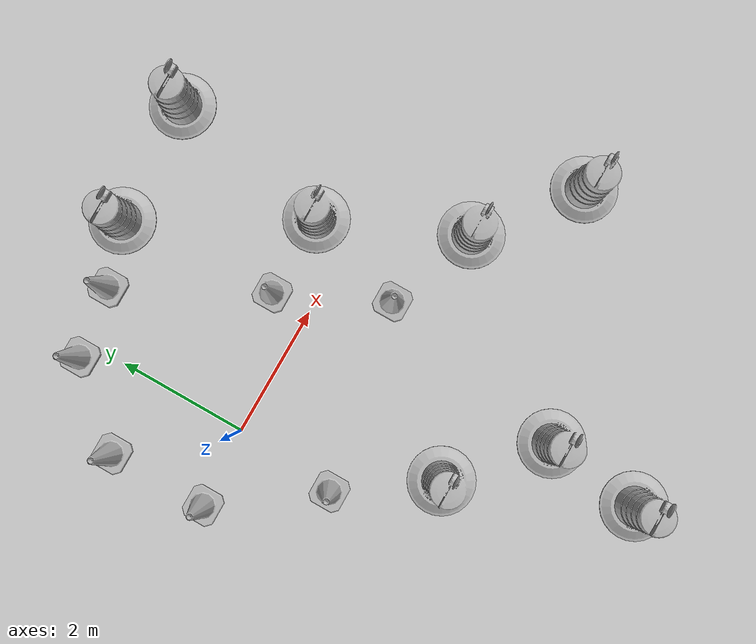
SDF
<sdf version="1.7">
 <world name="default">
  <light name="sun" type="directional">
   <pose>0 0 10 0 -0 0</pose>
   <diffuse>0.8 0.8 0.8 1</diffuse>
   <specular>0.2 0.2 0.2 1</specular>
   <attenuation>
    <range>1000</range>
    <constant>0.9</constant>
    <linear>0.01</linear>
    <quadratic>0.001</quadratic>
   </attenuation>
   <direction>-0.5 0.1 -0.9</direction>
   <spot><inner_angle>0</inner_angle><outer_angle>0</outer_angle><falloff>0</falloff></spot>
  </light>
  <model name="ground_plane">
   <static>1</static>
   <link name="link">
    <collision name="collision">
     <geometry><plane><normal>0 0 1</normal><size>100 100</size></plane></geometry>
     <surface>
      <contact><collide_bitmask>65535</collide_bitmask></contact>
      <friction><ode><mu>100</mu><mu2>50</mu2></ode></friction>
     </surface>
    </collision>
    <visual name="visual">
     <cast_shadows>0</cast_shadows>
     <geometry><plane><normal>0 0 1</normal><size>100 100</size></plane></geometry>
     <material>
      <script><uri>file://media/materials/scripts/gazebo.material</uri><name>Gazebo/Grey</name></script>
     </material>
    </visual>
   </link>
  </model>
  <gravity>0 0 -9.8</gravity>
  <magnetic_field>6e-06 2.3e-05 -4.2e-05</magnetic_field>
  <atmosphere type="adiabatic"/>
  <physics type="ode">
   <max_step_size>0.001</max_step_size>
   <real_time_factor>1</real_time_factor>
   <real_time_update_rate>1000</real_time_update_rate>
  </physics>
  <scene><ambient>0.4 0.4 0.4 1</ambient><background>0.7 0.7 0.7 1</background><shadows>1</shadows></scene>
  <audio><device>default</device></audio>
  <spherical_coordinates>
   <surface_model>EARTH_WGS84</surface_model>
   <latitude_deg>0</latitude_deg>
   <longitude_deg>0</longitude_deg>
   <elevation>0</elevation>
   <heading_deg>0</heading_deg>
  </spherical_coordinates>
  <model name="Construction Barrel">
   <link name="link">
    <inertial>
     <pose>0 0 0.4 0 -0 0</pose>
     <mass>500</mass>
     <inertia><ixx>51.2096</ixx><iyy>51.2096</iyy><izz>25</izz><ixy>0</ixy><ixz>0</ixz><iyz>0</iyz></inertia>
    </inertial>
    <collision name="collision">
     <geometry><mesh><uri>model://construction_barrel/meshes/construction_barrel.dae</uri></mesh></geometry>
    </collision>
    <visual name="visual">
     <geometry><mesh><uri>model://construction_barrel/meshes/construction_barrel.dae</uri></mesh></geometry>
    </visual>
   </link>
   <pose>1.81464 3.10747 -2e-06 -5e-06 -4e-06 -2.7e-05</pose>
  </model>
  <model name="Construction Cone">
   <link name="link">
    <collision name="collision">
     <geometry>
      <mesh><scale>10 10 10</scale><uri>model://construction_cone/meshes/construction_cone.dae</uri></mesh>
     </geometry>
    </collision>
    <visual name="visual">
     <geometry>
      <mesh><scale>10 10 10</scale><uri>model://construction_cone/meshes/construction_cone.dae</uri></mesh>
     </geometry>
    </visual>
    <inertial>
     <inertia><ixx>1</ixx><ixy>0</ixy><ixz>0</ixz><iyy>1</iyy><iyz>0</iyz><izz>1</izz></inertia>
     <mass>1</mass>
    </inertial>
   </link>
   <pose>0.852301 2.77346 0 -0 -0 -0</pose>
  </model>
  <model name="Construction Cone_0">
   <link name="link">
    <collision name="collision">
     <geometry>
      <mesh><scale>10 10 10</scale><uri>model://construction_cone/meshes/construction_cone.dae</uri></mesh>
     </geometry>
    </collision>
    <visual name="visual">
     <geometry>
      <mesh><scale>10 10 10</scale><uri>model://construction_cone/meshes/construction_cone.dae</uri></mesh>
     </geometry>
    </visual>
    <inertial>
     <inertia><ixx>1</ixx><ixy>0</ixy><ixz>0</ixz><iyy>1</iyy><iyz>0</iyz><izz>1</izz></inertia>
     <mass>1</mass>
    </inertial>
   </link>
   <pose>-0.239181 2.60908 -0 0 -1e-06 0</pose>
  </model>
  <model name="Construction Cone_1">
   <link name="link">
    <collision name="collision">
     <geometry>
      <mesh><scale>10 10 10</scale><uri>model://construction_cone/meshes/construction_cone.dae</uri></mesh>
     </geometry>
    </collision>
    <visual name="visual">
     <geometry>
      <mesh><scale>10 10 10</scale><uri>model://construction_cone/meshes/construction_cone.dae</uri></mesh>
     </geometry>
    </visual>
    <inertial>
     <inertia><ixx>1</ixx><ixy>0</ixy><ixz>0</ixz><iyy>1</iyy><iyz>0</iyz><izz>1</izz></inertia>
     <mass>1</mass>
    </inertial>
   </link>
   <pose>-1.22169 1.47836 -0 0 -1e-06 0</pose>
  </model>
  <model name="Construction Cone_2">
   <link name="link">
    <collision name="collision">
     <geometry>
      <mesh><scale>10 10 10</scale><uri>model://construction_cone/meshes/construction_cone.dae</uri></mesh>
     </geometry>
    </collision>
    <visual name="visual">
     <geometry>
      <mesh><scale>10 10 10</scale><uri>model://construction_cone/meshes/construction_cone.dae</uri></mesh>
     </geometry>
    </visual>
    <inertial>
     <inertia><ixx>1</ixx><ixy>0</ixy><ixz>0</ixz><iyy>1</iyy><iyz>0</iyz><izz>1</izz></inertia>
     <mass>1</mass>
    </inertial>
   </link>
   <pose>-1.20647 -0.061145 -0 1e-06 -0 0</pose>
  </model>
  <model name="Construction Cone_3">
   <link name="link">
    <collision name="collision">
     <geometry>
      <mesh><scale>10 10 10</scale><uri>model://construction_cone/meshes/construction_cone.dae</uri></mesh>
     </geometry>
    </collision>
    <visual name="visual">
     <geometry>
      <mesh><scale>10 10 10</scale><uri>model://construction_cone/meshes/construction_cone.dae</uri></mesh>
     </geometry>
    </visual>
    <inertial>
     <inertia><ixx>1</ixx><ixy>0</ixy><ixz>0</ixz><iyy>1</iyy><iyz>0</iyz><izz>1</izz></inertia>
     <mass>1</mass>
    </inertial>
   </link>
   <pose>-0.125873 -1.56301 -0 0 -0 0</pose>
  </model>
  <model name="Construction Cone_4">
   <link name="link">
    <collision name="collision">
     <geometry>
      <mesh><scale>10 10 10</scale><uri>model://construction_cone/meshes/construction_cone.dae</uri></mesh>
     </geometry>
    </collision>
    <visual name="visual">
     <geometry>
      <mesh><scale>10 10 10</scale><uri>model://construction_cone/meshes/construction_cone.dae</uri></mesh>
     </geometry>
    </visual>
    <inertial>
     <inertia><ixx>1</ixx><ixy>0</ixy><ixz>0</ixz><iyy>1</iyy><iyz>0</iyz><izz>1</izz></inertia>
     <mass>1</mass>
    </inertial>
   </link>
   <pose>2.74673 -0.998567 -1e-05 0 -0 0</pose>
  </model>
  <model name="Construction Cone_5">
   <link name="link">
    <collision name="collision">
     <geometry>
      <mesh><scale>10 10 10</scale><uri>model://construction_cone/meshes/construction_cone.dae</uri></mesh>
     </geometry>
    </collision>
    <visual name="visual">
     <geometry>
      <mesh><scale>10 10 10</scale><uri>model://construction_cone/meshes/construction_cone.dae</uri></mesh>
     </geometry>
    </visual>
    <inertial>
     <inertia><ixx>1</ixx><ixy>0</ixy><ixz>0</ixz><iyy>1</iyy><iyz>0</iyz><izz>1</izz></inertia>
     <mass>1</mass>
    </inertial>
   </link>
   <pose>1.9827 0.615635 -0 0 -0 0</pose>
  </model>
  <model name="Construction Barrel_0">
   <link name="link">
    <inertial>
     <pose>0 0 0.4 0 -0 0</pose>
     <mass>500</mass>
     <inertia><ixx>51.2096</ixx><iyy>51.2096</iyy><izz>25</izz><ixy>0</ixy><ixz>0</ixz><iyz>0</iyz></inertia>
    </inertial>
    <collision name="collision">
     <geometry><mesh><uri>model://construction_barrel/meshes/construction_barrel.dae</uri></mesh></geometry>
    </collision>
    <visual name="visual">
     <geometry><mesh><uri>model://construction_barrel/meshes/construction_barrel.dae</uri></mesh></geometry>
    </visual>
   </link>
   <pose>3.26269 0.594636 0 1e-06 1e-06 -2.5e-05</pose>
  </model>
  <model name="Construction Barrel_1">
   <link name="link">
    <inertial>
     <pose>0 0 0.4 0 -0 0</pose>
     <mass>500</mass>
     <inertia><ixx>51.2096</ixx><iyy>51.2096</iyy><izz>25</izz><ixy>0</ixy><ixz>0</ixz><iyz>0</iyz></inertia>
    </inertial>
    <collision name="collision">
     <geometry><mesh><uri>model://construction_barrel/meshes/construction_barrel.dae</uri></mesh></geometry>
    </collision>
    <visual name="visual">
     <geometry><mesh><uri>model://construction_barrel/meshes/construction_barrel.dae</uri></mesh></geometry>
    </visual>
   </link>
   <pose>3.76265 3.20476 -1e-06 4e-06 -2e-06 -1.9e-05</pose>
  </model>
  <model name="Construction Barrel_2">
   <link name="link">
    <inertial>
     <pose>0 0 0.4 0 -0 0</pose>
     <mass>500</mass>
     <inertia><ixx>51.2096</ixx><iyy>51.2096</iyy><izz>25</izz><ixy>0</ixy><ixz>0</ixz><iyz>0</iyz></inertia>
    </inertial>
    <collision name="collision">
     <geometry><mesh><uri>model://construction_barrel/meshes/construction_barrel.dae</uri></mesh></geometry>
    </collision>
    <visual name="visual">
     <geometry><mesh><uri>model://construction_barrel/meshes/construction_barrel.dae</uri></mesh></geometry>
    </visual>
   </link>
   <pose>0.812235 -2.91317 -1e-06 2e-06 -1e-06 -1e-05</pose>
  </model>
  <model name="Construction Barrel_3">
   <link name="link">
    <inertial>
     <pose>0 0 0.4 0 -0 0</pose>
     <mass>500</mass>
     <inertia><ixx>51.2096</ixx><iyy>51.2096</iyy><izz>25</izz><ixy>0</ixy><ixz>0</ixz><iyz>0</iyz></inertia>
    </inertial>
    <collision name="collision">
     <geometry><mesh><uri>model://construction_barrel/meshes/construction_barrel.dae</uri></mesh></geometry>
    </collision>
    <visual name="visual">
     <geometry><mesh><uri>model://construction_barrel/meshes/construction_barrel.dae</uri></mesh></geometry>
    </visual>
   </link>
   <pose>2.08067 -4.05449 -3e-06 -6e-06 -5e-06 -9e-06</pose>
  </model>
  <model name="Construction Barrel_4">
   <link name="link">
    <inertial>
     <pose>0 0 0.4 0 -0 0</pose>
     <mass>500</mass>
     <inertia><ixx>51.2096</ixx><iyy>51.2096</iyy><izz>25</izz><ixy>0</ixy><ixz>0</ixz><iyz>0</iyz></inertia>
    </inertial>
    <collision name="collision">
     <geometry><mesh><uri>model://construction_barrel/meshes/construction_barrel.dae</uri></mesh></geometry>
    </collision>
    <visual name="visual">
     <geometry><mesh><uri>model://construction_barrel/meshes/construction_barrel.dae</uri></mesh></geometry>
    </visual>
   </link>
   <pose>1.88098 -5.539 1e-06 6e-06 7e-06 -8e-06</pose>
  </model>
  <model name="Construction Barrel_5">
   <link name="link">
    <inertial>
     <pose>0 0 0.4 0 -0 0</pose>
     <mass>500</mass>
     <inertia><ixx>51.2096</ixx><iyy>51.2096</iyy><izz>25</izz><ixy>0</ixy><ixz>0</ixz><iyz>0</iyz></inertia>
    </inertial>
    <collision name="collision">
     <geometry><mesh><uri>model://construction_barrel/meshes/construction_barrel.dae</uri></mesh></geometry>
    </collision>
    <visual name="visual">
     <geometry><mesh><uri>model://construction_barrel/meshes/construction_barrel.dae</uri></mesh></geometry>
    </visual>
   </link>
   <pose>4.19421 -1.53225 -0 0 0 -7e-06</pose>
  </model>
  <model name="Construction Barrel_6">
   <link name="link">
    <inertial>
     <pose>0 0 0.4 0 -0 0</pose>
     <mass>500</mass>
     <inertia><ixx>51.2096</ixx><iyy>51.2096</iyy><izz>25</izz><ixy>0</ixy><ixz>0</ixz><iyz>0</iyz></inertia>
    </inertial>
    <collision name="collision">
     <geometry><mesh><uri>model://construction_barrel/meshes/construction_barrel.dae</uri></mesh></geometry>
    </collision>
    <visual name="visual">
     <geometry><mesh><uri>model://construction_barrel/meshes/construction_barrel.dae</uri></mesh></geometry>
    </visual>
   </link>
   <pose>5.62882 -2.66779 -2e-06 4e-06 7e-06 -4e-06</pose>
  </model>
 </world>
</sdf>
